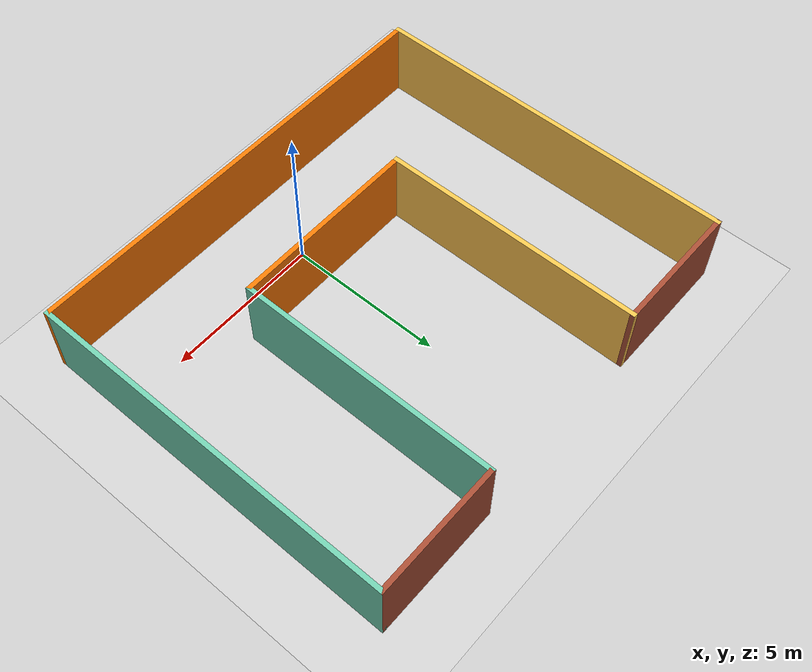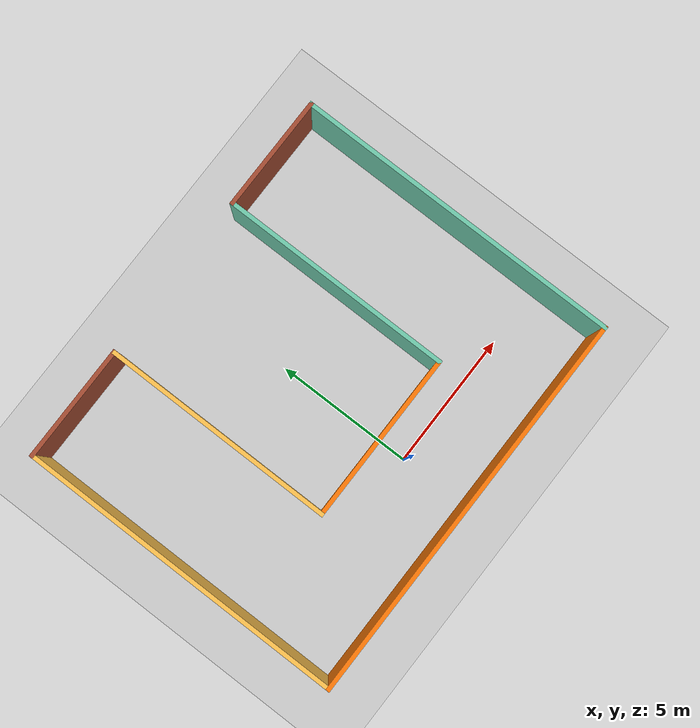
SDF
<sdf version="1.6">
 <world name="default">
  <light name="sun" type="directional">
   <pose>0 0 10 0 -0 0</pose>
   <diffuse>0.8 0.8 0.8 1</diffuse>
   <specular>0.2 0.2 0.2 1</specular>
   <attenuation>
    <range>1000</range>
    <constant>0.9</constant>
    <linear>0.01</linear>
    <quadratic>0.001</quadratic>
   </attenuation>
   <direction>-0.5 0.1 -0.9</direction>
  </light>
  <model name="ground_plane">
   <static>1</static>
   <link name="link">
    <collision name="collision">
     <geometry><plane><normal>0 0 1</normal><size>100 100</size></plane></geometry>
     <surface>
      <contact><collide_bitmask>65535</collide_bitmask></contact>
      <friction><ode><mu>100</mu><mu2>50</mu2></ode></friction>
     </surface>
    </collision>
    <visual name="visual">
     <cast_shadows>0</cast_shadows>
     <geometry><plane><normal>0 0 1</normal><size>100 100</size></plane></geometry>
     <material>
      <script><uri>file://media/materials/scripts/gazebo.material</uri><name>Gazebo/Grey</name></script>
     </material>
    </visual>
   </link>
  </model>
  <gravity>0 0 -9.8</gravity>
  <magnetic_field>6e-06 2.3e-05 -4.2e-05</magnetic_field>
  <atmosphere type="adiabatic"/>
  <physics name="default_physics" default="0" type="ode">
   <max_step_size>0.001</max_step_size>
   <real_time_factor>1</real_time_factor>
   <real_time_update_rate>1000</real_time_update_rate>
  </physics>
  <scene><ambient>0.4 0.4 0.4 1</ambient><background>0.7 0.7 0.7 1</background><shadows>1</shadows></scene>
  <spherical_coordinates>
   <surface_model>EARTH_WGS84</surface_model>
   <latitude_deg>0</latitude_deg>
   <longitude_deg>0</longitude_deg>
   <elevation>0</elevation>
   <heading_deg>0</heading_deg>
  </spherical_coordinates>
  <model name="U_building">
   <pose>-0.048327 3.49571 0 0 -0 0</pose>
   <link name="Wall_15">
    <collision name="Wall_15_Collision">
     <geometry><box><size>6.25 0.15 2.5</size></box></geometry>
     <pose>0 0 1.25 0 -0 0</pose>
    </collision>
    <visual name="Wall_15_Visual">
     <pose>0 0 1.25 0 -0 0</pose>
     <geometry><box><size>6.25 0.15 2.5</size></box></geometry>
     <material>
      <script><uri>file://media/materials/scripts/gazebo.material</uri><name>Gazebo/Grey</name></script>
      <ambient>0.996078 0.47451 0.0196078 1</ambient>
     </material>
     <meta><layer>0</layer></meta>
    </visual>
    <pose>0.025 -2.425 0 0 -0 0</pose>
   </link>
   <link name="Wall_20">
    <collision name="Wall_20_Collision">
     <geometry><box><size>8.5 0.15 2.5</size></box></geometry>
     <pose>0 0 1.25 0 -0 0</pose>
    </collision>
    <visual name="Wall_20_Visual">
     <pose>0 0 1.25 0 -0 0</pose>
     <geometry><box><size>8.5 0.15 2.5</size></box></geometry>
     <material>
      <script><uri>file://media/materials/scripts/gazebo.material</uri><name>Gazebo/Grey</name></script>
      <ambient>0.435294 0.796078 0.67451 1</ambient>
     </material>
     <meta><layer>0</layer></meta>
    </visual>
    <pose>3.075 1.75 0 0 -0 1.5708</pose>
   </link>
   <link name="Wall_22">
    <collision name="Wall_22_Collision">
     <geometry><box><size>12 0.15 2.5</size></box></geometry>
     <pose>0 0 1.25 0 -0 0</pose>
    </collision>
    <visual name="Wall_22_Visual">
     <pose>0 0 1.25 0 -0 0</pose>
     <geometry><box><size>12 0.15 2.5</size></box></geometry>
     <material>
      <script><uri>file://media/materials/scripts/gazebo.material</uri><name>Gazebo/Grey</name></script>
      <ambient>0.435294 0.796078 0.67451 1</ambient>
     </material>
     <meta><layer>0</layer></meta>
    </visual>
    <pose>7.175 0 0 0 0 -1.5708</pose>
   </link>
   <link name="Wall_23">
    <collision name="Wall_23_Collision">
     <geometry><box><size>14.5 0.15 2.5</size></box></geometry>
     <pose>0 0 1.25 0 -0 0</pose>
    </collision>
    <visual name="Wall_23_Visual">
     <pose>0 0 1.25 0 -0 0</pose>
     <geometry><box><size>14.5 0.15 2.5</size></box></geometry>
     <material>
      <script><uri>file://media/materials/scripts/gazebo.material</uri><name>Gazebo/Grey</name></script>
      <ambient>0.996078 0.47451 0.0196078 1</ambient>
     </material>
     <meta><layer>0</layer></meta>
    </visual>
    <pose>0 -5.925 0 0 -0 3.14159</pose>
   </link>
   <link name="Wall_24">
    <collision name="Wall_24_Collision">
     <geometry><box><size>12 0.15 2.5</size></box></geometry>
     <pose>0 0 1.25 0 -0 0</pose>
    </collision>
    <visual name="Wall_24_Visual">
     <pose>0 0 1.25 0 -0 0</pose>
     <geometry><box><size>12 0.15 2.5</size></box></geometry>
     <material>
      <script><uri>file://media/materials/scripts/gazebo.material</uri><name>Gazebo/Grey</name></script>
      <ambient>1 0.764706 0.305882 1</ambient>
     </material>
     <meta><layer>0</layer></meta>
    </visual>
    <pose>-7.175 0 0 0 -0 1.5708</pose>
   </link>
   <link name="Wall_26">
    <collision name="Wall_26_Collision">
     <geometry><box><size>8.5 0.15 2.5</size></box></geometry>
     <pose>0 0 1.25 0 -0 0</pose>
    </collision>
    <visual name="Wall_26_Visual">
     <pose>0 0 1.25 0 -0 0</pose>
     <geometry><box><size>8.5 0.15 2.5</size></box></geometry>
     <material>
      <script><uri>file://media/materials/scripts/gazebo.material</uri><name>Gazebo/Grey</name></script>
      <ambient>1 0.764706 0.305882 1</ambient>
     </material>
     <meta><layer>0</layer></meta>
    </visual>
    <pose>-3.025 1.75 0 0 -0 1.5708</pose>
   </link>
   <link name="Wall_27">
    <collision name="Wall_27_Collision">
     <geometry><box><size>4.3 0.15 2.5</size></box></geometry>
     <pose>0 0 1.25 0 -0 0</pose>
    </collision>
    <visual name="Wall_27_Visual">
     <pose>0 0 1.25 0 -0 0</pose>
     <geometry><box><size>4.3 0.15 2.5</size></box></geometry>
     <material>
      <script><uri>file://media/materials/scripts/gazebo.material</uri><name>Gazebo/Bricks</name></script>
      <ambient>1 1 1 1</ambient>
     </material>
     <meta><layer>0</layer></meta>
    </visual>
    <pose>-5.1 5.925 0 0 -0 3.14159</pose>
   </link>
   <link name="Wall_29">
    <collision name="Wall_29_Collision">
     <geometry><box><size>4.25 0.15 2.5</size></box></geometry>
     <pose>0 0 1.25 0 -0 0</pose>
    </collision>
    <visual name="Wall_29_Visual">
     <pose>0 0 1.25 0 -0 0</pose>
     <geometry><box><size>4.25 0.15 2.5</size></box></geometry>
     <material>
      <script><uri>file://media/materials/scripts/gazebo.material</uri><name>Gazebo/Bricks</name></script>
      <ambient>1 1 1 1</ambient>
     </material>
     <meta><layer>0</layer></meta>
    </visual>
    <pose>5.125 5.925 0 0 -0 0</pose>
   </link>
   <static>1</static>
  </model>
 </world>
</sdf>
